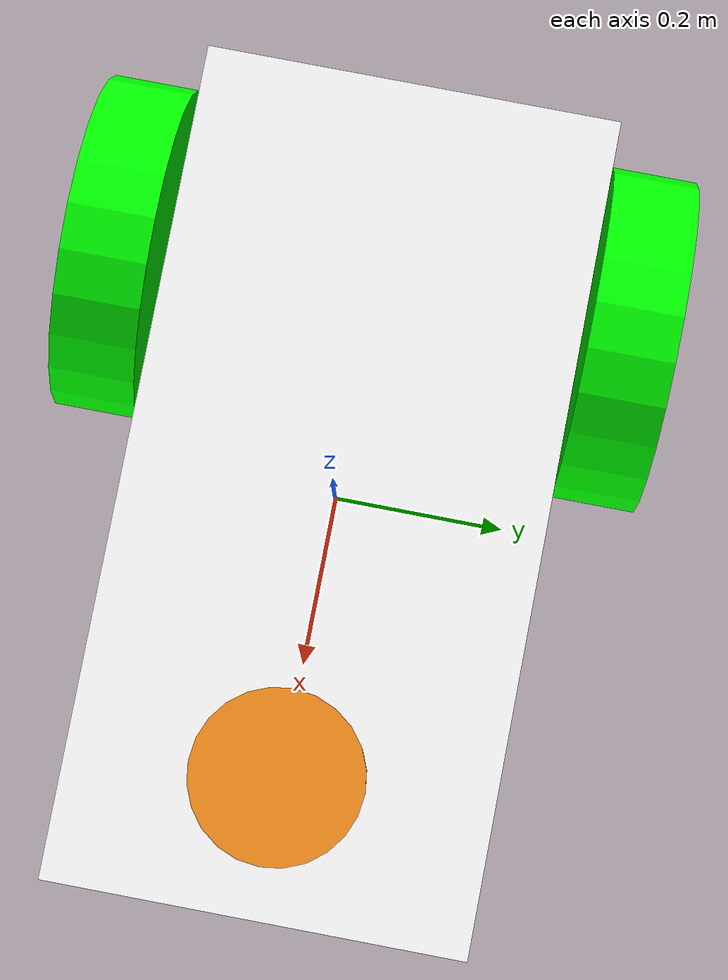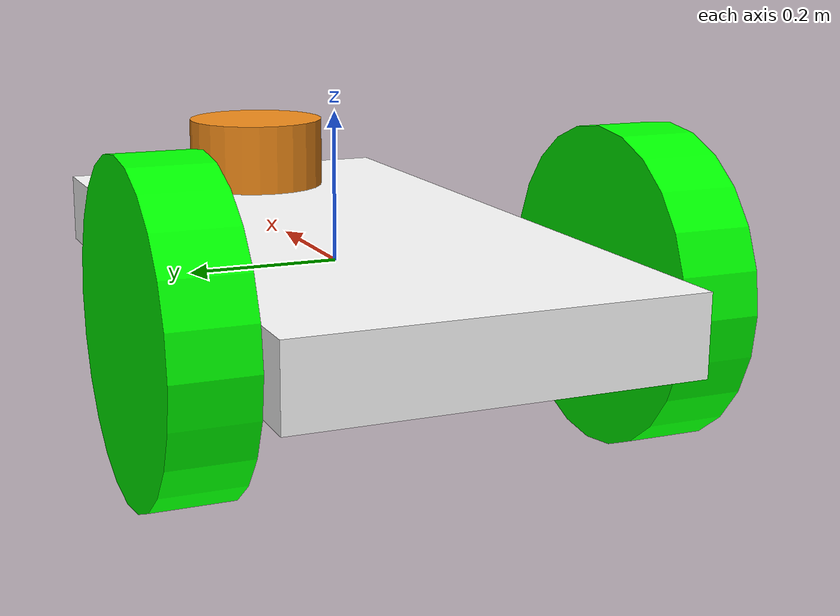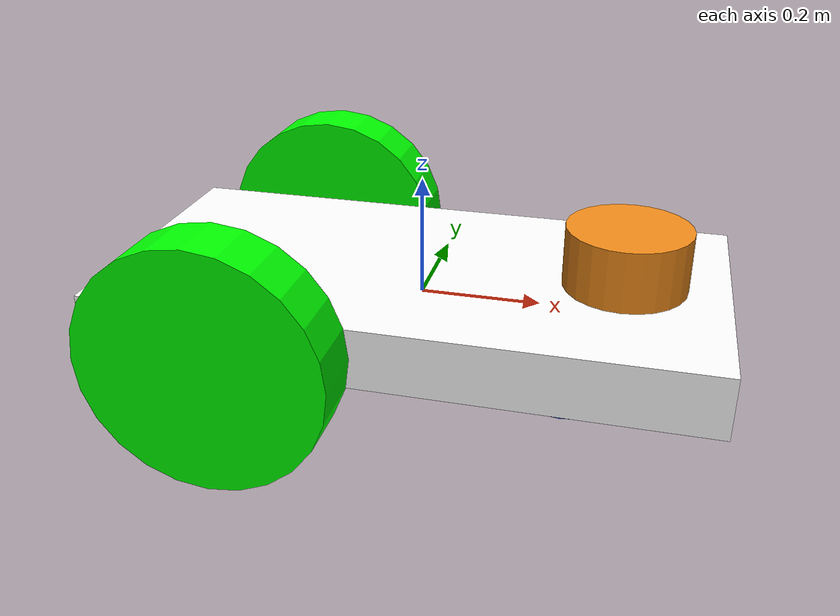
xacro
<?xml version="1.0"?>

<robot name="diff_robot" xmlns:xacro="http://wiki.ros.org/xacro">
  <xacro:include filename="$(find diff_robot)/urdf/rviz_stuff.xacro"/>
  <xacro:include filename="$(find diff_robot)/urdf/gazebo_stuff.xacro"/>
  <xacro:property name="chassis_length" value="1.0"/>
  <xacro:property name="chassis_width" value="0.5"/>
  <xacro:property name="chassis_height" value="0.10"/>
  <xacro:property name="wheel_radius" value="0.20"/>
  <xacro:property name="wheel_thickness" value="0.10"/>
  <xacro:property name="wheel_joint_offset" value="0.05"/>
  <xacro:property name="caster_radius" value="${wheel_radius - chassis_height/2 -0.05}"/>

  <xacro:macro name="chassis_inertia">
    <inertial>
      <mass value="0.5"/>
      <inertia ixx="0.04209" ixy="0" ixz="0" iyy="0.01084" iyz="0" izz="0.052084"/>
    </inertial>
  </xacro:macro>

  <xacro:macro name="wheel_inertia">
    <inertial>
      <mass value="0.20"/>
      <inertia ixx="0.0023" ixy="0" ixz="0" iyy="0.0023" iyz="0" izz="0.004"/>
    </inertial>
  </xacro:macro>

  <!-- Main Body-->
  <link name="chassis">
    <visual>
      <origin xyz="0 0 0" rpy="0 0 0"/>
      <material name="white"/>
      <geometry>
        <box size="${chassis_length} ${chassis_width} ${chassis_height}"/>
      </geometry>
    </visual>
    <collision>
      <origin xyz="0 0 0" rpy="0 0 0"/>
      <geometry>
        <box size="${chassis_length} ${chassis_width} ${chassis_height}"/>
      </geometry>
    </collision>
    <xacro:chassis_inertia />
    <visual name="caster">
      <origin xyz="${chassis_length/4} 0 -${chassis_height/2 +0.05}" rpy="0 0 0"/>
      <geometry>
        <sphere radius="${caster_radius}"/>
      </geometry>
    </visual>
    <collision name="caster_collision">
      <origin xyz="${chassis_length/4} 0 -${chassis_height/2 +0.05}" rpy="0 0 0"/>
      <geometry>
        <sphere radius="${caster_radius}"/>
      </geometry>
    </collision>
  </link>

  <!--Right Wheel-->
  <link name="right_wheel">
    <visual>
      <origin xyz="0 0 0" rpy="1.5708 0 0"/>
      <material name="green"/>
      <geometry>
        <cylinder length="${wheel_thickness}" radius="${wheel_radius}"/>
      </geometry>
    </visual>
    <collision>
      <origin xyz="0 0 0" rpy="1.5708 0 0"/>
      <geometry>
        <cylinder length="${wheel_thickness}" radius="${wheel_radius}"/>
      </geometry>
    </collision>
    <xacro:wheel_inertia />
  </link>

  <!--chassis Right Joint-->
  <joint name="chassis_right_joint" type="continuous">
    <axis xyz="0 1 0"/>
    <origin xyz="-${chassis_length/4} ${chassis_width/2 + wheel_joint_offset} 0" rpy="0 0 0"/>
    <parent link="chassis"/>
    <child link="right_wheel"/>
  </joint>

  <!--Left Wheel-->
  <link name="left_wheel">
    <visual>
      <origin xyz="0 0 0" rpy="1.5708 0 0"/>
      <material name="green"/>
      <geometry>
        <cylinder length="${wheel_thickness}" radius="${wheel_radius}"/>
      </geometry>
    </visual>
    <collision>
      <origin xyz="0 0 0" rpy="1.5708 0 0"/>
      <geometry>
        <cylinder length="${wheel_thickness}" radius="${wheel_radius}"/>
      </geometry>
    </collision>
    <xacro:wheel_inertia />
  </link>

  <!--chassis_left_joint-->
  <joint name="chassis_left_joint" type="continuous">
    <axis xyz="0 1 0"/>
    <origin xyz="-${chassis_length/4} -${chassis_width/2 + wheel_joint_offset} 0" rpy="0 0 0"/>
    <parent link="chassis"/>
    <child link="left_wheel"/>
  </joint>

  <!--Laser link-->
  <link name="laser_scanner">
    <visual>
      <origin xyz="0 0 0" rpy="0 0 0"/>
      <geometry>
        <cylinder length="${wheel_thickness}" radius="${wheel_radius/2}"/>
      </geometry>
    </visual>
    <collision>
      <origin xyz="0 0 0" rpy="0 0 0"/>
      <geometry>
        <cylinder length="${wheel_thickness}" radius="${wheel_radius/2}"/>
      </geometry>
    </collision>
  </link>
  <!--Laser Joint-->
  <joint name="laser_joint" type="fixed">
    <origin xyz="${chassis_length/3} 0 ${chassis_height/2 + wheel_thickness/2}"/>
    <parent link="chassis"/>
    <child link="laser_scanner"/>
  </joint>
</robot>

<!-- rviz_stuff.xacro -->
<robot>
  <material name="black">
    <color rgba="0.0 0.0 0.0 1.0"/>
  </material>

  <material name="blue">
    <color rgba="0.0 0.0 0.8 0.7"/>
  </material>

  <material name="green">
    <color rgba="0.0 1.0 0.0 0.9"/>
  </material>

  <material name="gray">
    <color rgba="0.8 0.8 0.8 0.9"/>
  </material>

  <material name="darkgray">
    <color rgba="0.3 0.3 0.3 1.0"/>
  </material>

  <material name="red">
    <color rgba="0.8 0.0 0.0 1.0"/>
  </material>

  <material name="white">
    <color rgba="1.0 1.0 1.0 1.0"/>
  </material>

  <material name="yellow">
    <color rgba="0.8 0.8 0.0 1.0"/>
  </material>
</robot>
